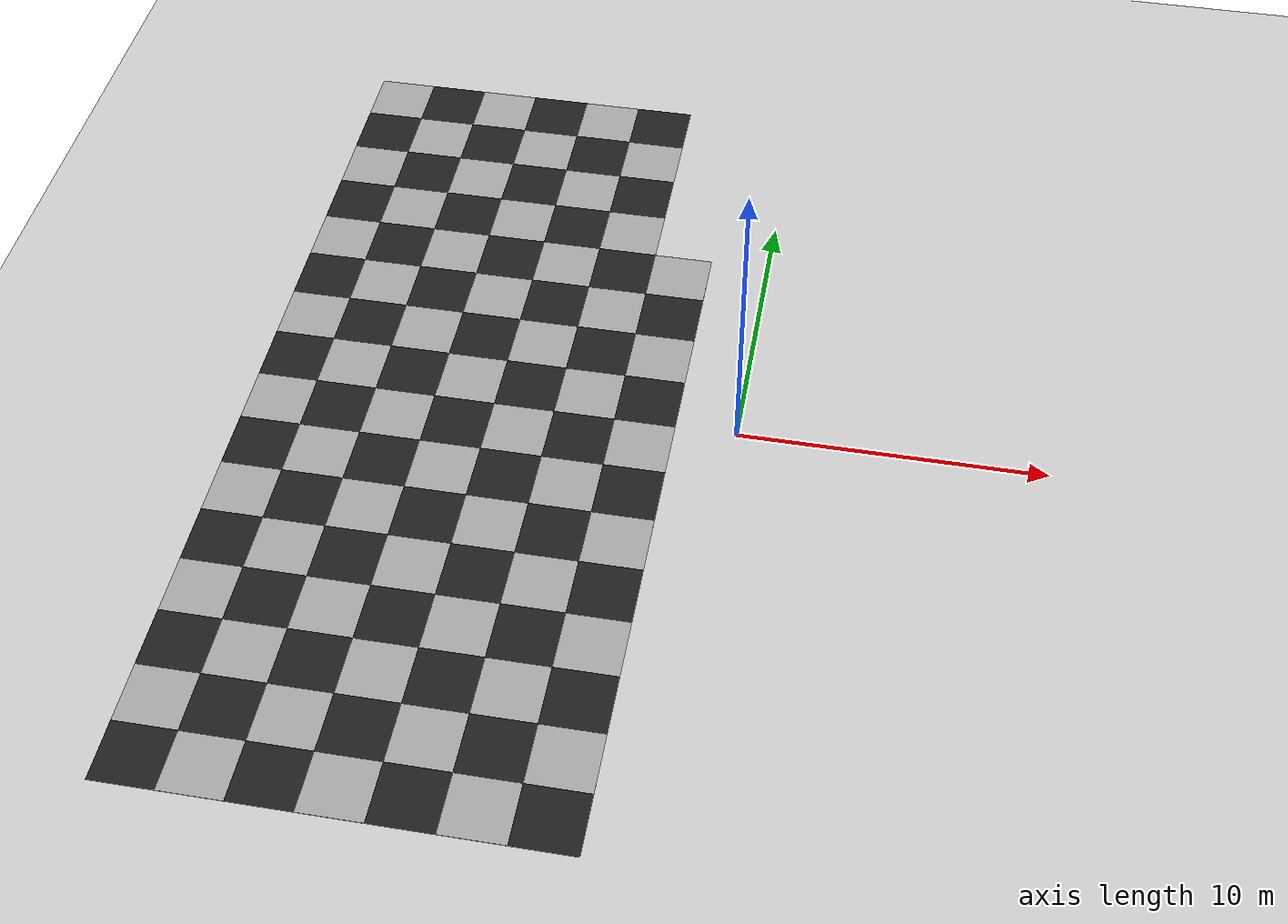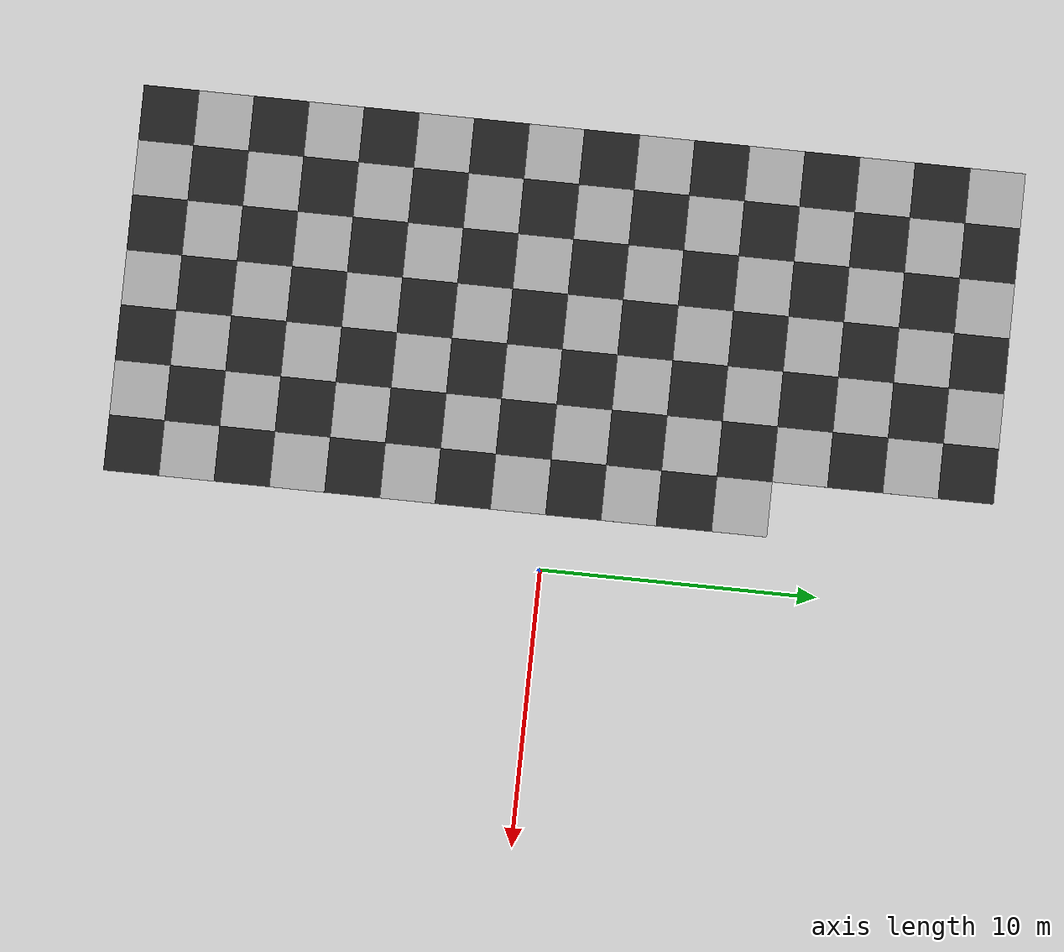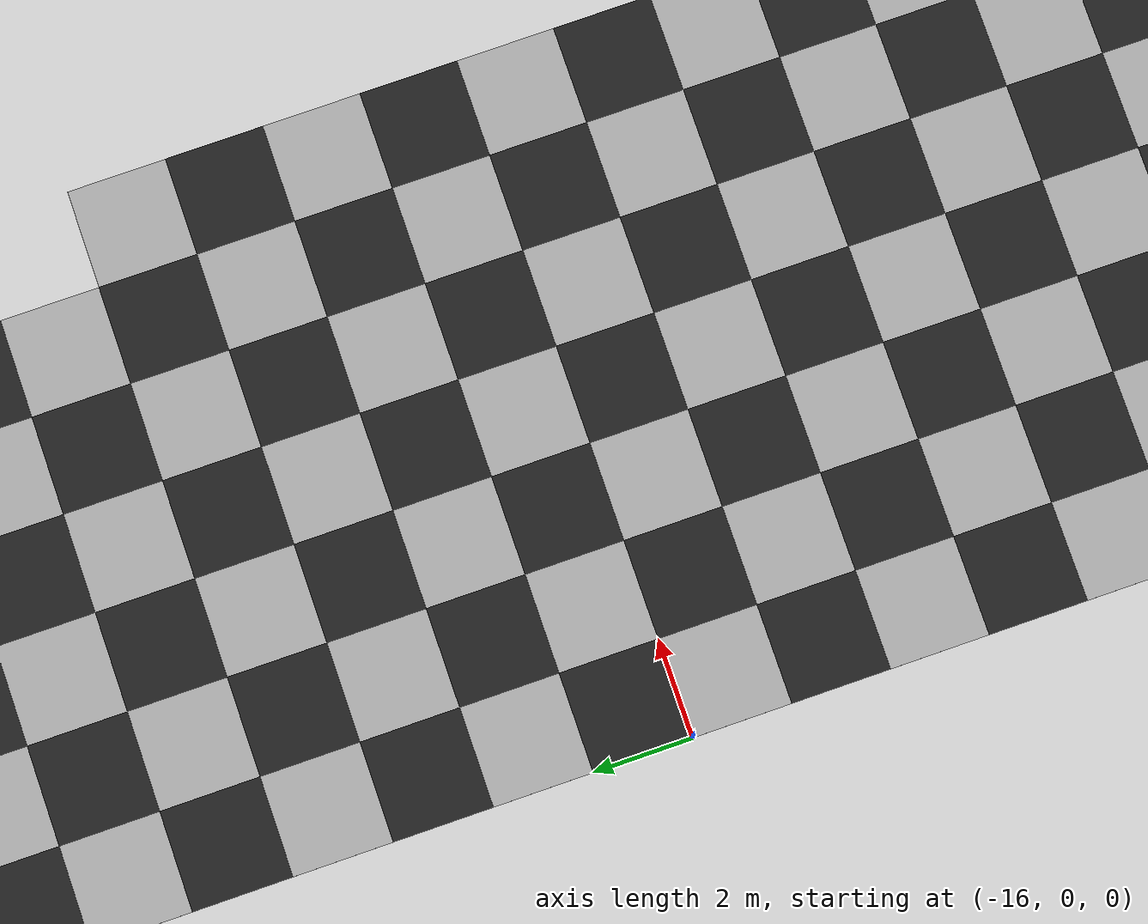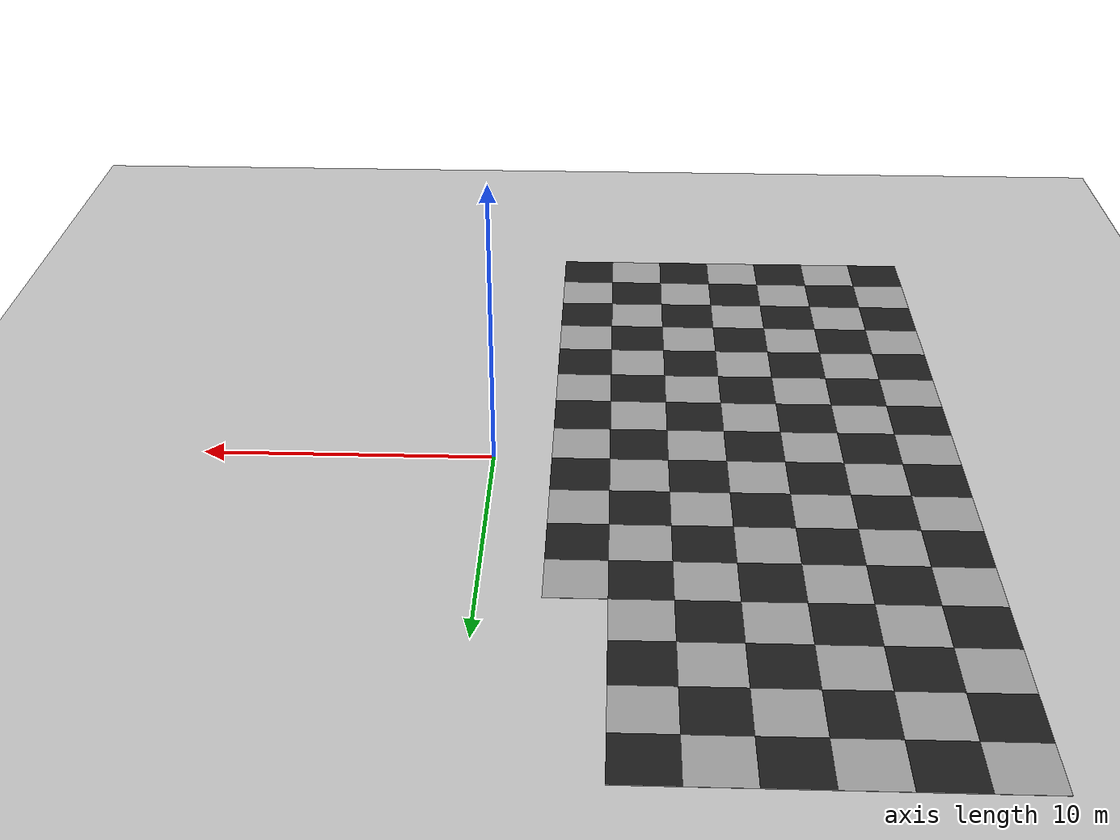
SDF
<sdf version="1.9">
 <world name="v6_optical_flow">
  <model name="ground_plane">
   <static>true</static>
   <link name="link">
    <collision name="collision">
     <geometry><plane><normal>0 0 1</normal><size>1 1</size></plane></geometry>
    </collision>
    <visual name="visual">
     <geometry><plane><normal>0 0 1</normal><size>500 500</size></plane></geometry>
     <material>
      <ambient>0.8 0.8 0.8 1</ambient>
      <diffuse>0.8 0.8 0.8 1</diffuse>
      <specular>0.1 0.1 0.1 1</specular>
     </material>
    </visual>
   </link>
  </model>
  <model name="optical_flow_floor">
   <static>true</static>
   <link name="tile_-8_-8">
    <pose>-15 -15 0.006 0 0 0</pose>
    <visual name="visual">
     <geometry><box><size>2 2 0.01</size></box></geometry>
     <material>
      <ambient>0.12 0.12 0.12 1</ambient>
      <diffuse>0.12 0.12 0.12 1</diffuse>
      <specular>0 0 0 1</specular>
     </material>
    </visual>
   </link>
   <link name="tile_-8_-7">
    <pose>-15 -13 0.006 0 0 0</pose>
    <visual name="visual">
     <geometry><box><size>2 2 0.01</size></box></geometry>
     <material>
      <ambient>0.65 0.65 0.65 1</ambient>
      <diffuse>0.65 0.65 0.65 1</diffuse>
      <specular>0 0 0 1</specular>
     </material>
    </visual>
   </link>
   <link name="tile_-8_-6">
    <pose>-15 -11 0.006 0 0 0</pose>
    <visual name="visual">
     <geometry><box><size>2 2 0.01</size></box></geometry>
     <material>
      <ambient>0.12 0.12 0.12 1</ambient>
      <diffuse>0.12 0.12 0.12 1</diffuse>
      <specular>0 0 0 1</specular>
     </material>
    </visual>
   </link>
   <link name="tile_-8_-5">
    <pose>-15 -9 0.006 0 0 0</pose>
    <visual name="visual">
     <geometry><box><size>2 2 0.01</size></box></geometry>
     <material>
      <ambient>0.65 0.65 0.65 1</ambient>
      <diffuse>0.65 0.65 0.65 1</diffuse>
      <specular>0 0 0 1</specular>
     </material>
    </visual>
   </link>
   <link name="tile_-8_-4">
    <pose>-15 -7 0.006 0 0 0</pose>
    <visual name="visual">
     <geometry><box><size>2 2 0.01</size></box></geometry>
     <material>
      <ambient>0.12 0.12 0.12 1</ambient>
      <diffuse>0.12 0.12 0.12 1</diffuse>
      <specular>0 0 0 1</specular>
     </material>
    </visual>
   </link>
   <link name="tile_-8_-3">
    <pose>-15 -5 0.006 0 0 0</pose>
    <visual name="visual">
     <geometry><box><size>2 2 0.01</size></box></geometry>
     <material>
      <ambient>0.65 0.65 0.65 1</ambient>
      <diffuse>0.65 0.65 0.65 1</diffuse>
      <specular>0 0 0 1</specular>
     </material>
    </visual>
   </link>
   <link name="tile_-8_-2">
    <pose>-15 -3 0.006 0 0 0</pose>
    <visual name="visual">
     <geometry><box><size>2 2 0.01</size></box></geometry>
     <material>
      <ambient>0.12 0.12 0.12 1</ambient>
      <diffuse>0.12 0.12 0.12 1</diffuse>
      <specular>0 0 0 1</specular>
     </material>
    </visual>
   </link>
   <link name="tile_-8_-1">
    <pose>-15 -1 0.006 0 0 0</pose>
    <visual name="visual">
     <geometry><box><size>2 2 0.01</size></box></geometry>
     <material>
      <ambient>0.65 0.65 0.65 1</ambient>
      <diffuse>0.65 0.65 0.65 1</diffuse>
      <specular>0 0 0 1</specular>
     </material>
    </visual>
   </link>
   <link name="tile_-8_0">
    <pose>-15 1 0.006 0 0 0</pose>
    <visual name="visual">
     <geometry><box><size>2 2 0.01</size></box></geometry>
     <material>
      <ambient>0.12 0.12 0.12 1</ambient>
      <diffuse>0.12 0.12 0.12 1</diffuse>
      <specular>0 0 0 1</specular>
     </material>
    </visual>
   </link>
   <link name="tile_-8_1">
    <pose>-15 3 0.006 0 0 0</pose>
    <visual name="visual">
     <geometry><box><size>2 2 0.01</size></box></geometry>
     <material>
      <ambient>0.65 0.65 0.65 1</ambient>
      <diffuse>0.65 0.65 0.65 1</diffuse>
      <specular>0 0 0 1</specular>
     </material>
    </visual>
   </link>
   <link name="tile_-8_2">
    <pose>-15 5 0.006 0 0 0</pose>
    <visual name="visual">
     <geometry><box><size>2 2 0.01</size></box></geometry>
     <material>
      <ambient>0.12 0.12 0.12 1</ambient>
      <diffuse>0.12 0.12 0.12 1</diffuse>
      <specular>0 0 0 1</specular>
     </material>
    </visual>
   </link>
   <link name="tile_-8_3">
    <pose>-15 7 0.006 0 0 0</pose>
    <visual name="visual">
     <geometry><box><size>2 2 0.01</size></box></geometry>
     <material>
      <ambient>0.65 0.65 0.65 1</ambient>
      <diffuse>0.65 0.65 0.65 1</diffuse>
      <specular>0 0 0 1</specular>
     </material>
    </visual>
   </link>
   <link name="tile_-8_4">
    <pose>-15 9 0.006 0 0 0</pose>
    <visual name="visual">
     <geometry><box><size>2 2 0.01</size></box></geometry>
     <material>
      <ambient>0.12 0.12 0.12 1</ambient>
      <diffuse>0.12 0.12 0.12 1</diffuse>
      <specular>0 0 0 1</specular>
     </material>
    </visual>
   </link>
   <link name="tile_-8_5">
    <pose>-15 11 0.006 0 0 0</pose>
    <visual name="visual">
     <geometry><box><size>2 2 0.01</size></box></geometry>
     <material>
      <ambient>0.65 0.65 0.65 1</ambient>
      <diffuse>0.65 0.65 0.65 1</diffuse>
      <specular>0 0 0 1</specular>
     </material>
    </visual>
   </link>
   <link name="tile_-8_6">
    <pose>-15 13 0.006 0 0 0</pose>
    <visual name="visual">
     <geometry><box><size>2 2 0.01</size></box></geometry>
     <material>
      <ambient>0.12 0.12 0.12 1</ambient>
      <diffuse>0.12 0.12 0.12 1</diffuse>
      <specular>0 0 0 1</specular>
     </material>
    </visual>
   </link>
   <link name="tile_-8_7">
    <pose>-15 15 0.006 0 0 0</pose>
    <visual name="visual">
     <geometry><box><size>2 2 0.01</size></box></geometry>
     <material>
      <ambient>0.65 0.65 0.65 1</ambient>
      <diffuse>0.65 0.65 0.65 1</diffuse>
      <specular>0 0 0 1</specular>
     </material>
    </visual>
   </link>
   <link name="tile_-7_-8">
    <pose>-13 -15 0.006 0 0 0</pose>
    <visual name="visual">
     <geometry><box><size>2 2 0.01</size></box></geometry>
     <material>
      <ambient>0.65 0.65 0.65 1</ambient>
      <diffuse>0.65 0.65 0.65 1</diffuse>
      <specular>0 0 0 1</specular>
     </material>
    </visual>
   </link>
   <link name="tile_-7_-7">
    <pose>-13 -13 0.006 0 0 0</pose>
    <visual name="visual">
     <geometry><box><size>2 2 0.01</size></box></geometry>
     <material>
      <ambient>0.12 0.12 0.12 1</ambient>
      <diffuse>0.12 0.12 0.12 1</diffuse>
      <specular>0 0 0 1</specular>
     </material>
    </visual>
   </link>
   <link name="tile_-7_-6">
    <pose>-13 -11 0.006 0 0 0</pose>
    <visual name="visual">
     <geometry><box><size>2 2 0.01</size></box></geometry>
     <material>
      <ambient>0.65 0.65 0.65 1</ambient>
      <diffuse>0.65 0.65 0.65 1</diffuse>
      <specular>0 0 0 1</specular>
     </material>
    </visual>
   </link>
   <link name="tile_-7_-5">
    <pose>-13 -9 0.006 0 0 0</pose>
    <visual name="visual">
     <geometry><box><size>2 2 0.01</size></box></geometry>
     <material>
      <ambient>0.12 0.12 0.12 1</ambient>
      <diffuse>0.12 0.12 0.12 1</diffuse>
      <specular>0 0 0 1</specular>
     </material>
    </visual>
   </link>
   <link name="tile_-7_-4">
    <pose>-13 -7 0.006 0 0 0</pose>
    <visual name="visual">
     <geometry><box><size>2 2 0.01</size></box></geometry>
     <material>
      <ambient>0.65 0.65 0.65 1</ambient>
      <diffuse>0.65 0.65 0.65 1</diffuse>
      <specular>0 0 0 1</specular>
     </material>
    </visual>
   </link>
   <link name="tile_-7_-3">
    <pose>-13 -5 0.006 0 0 0</pose>
    <visual name="visual">
     <geometry><box><size>2 2 0.01</size></box></geometry>
     <material>
      <ambient>0.12 0.12 0.12 1</ambient>
      <diffuse>0.12 0.12 0.12 1</diffuse>
      <specular>0 0 0 1</specular>
     </material>
    </visual>
   </link>
   <link name="tile_-7_-2">
    <pose>-13 -3 0.006 0 0 0</pose>
    <visual name="visual">
     <geometry><box><size>2 2 0.01</size></box></geometry>
     <material>
      <ambient>0.65 0.65 0.65 1</ambient>
      <diffuse>0.65 0.65 0.65 1</diffuse>
      <specular>0 0 0 1</specular>
     </material>
    </visual>
   </link>
   <link name="tile_-7_-1">
    <pose>-13 -1 0.006 0 0 0</pose>
    <visual name="visual">
     <geometry><box><size>2 2 0.01</size></box></geometry>
     <material>
      <ambient>0.12 0.12 0.12 1</ambient>
      <diffuse>0.12 0.12 0.12 1</diffuse>
      <specular>0 0 0 1</specular>
     </material>
    </visual>
   </link>
   <link name="tile_-7_0">
    <pose>-13 1 0.006 0 0 0</pose>
    <visual name="visual">
     <geometry><box><size>2 2 0.01</size></box></geometry>
     <material>
      <ambient>0.65 0.65 0.65 1</ambient>
      <diffuse>0.65 0.65 0.65 1</diffuse>
      <specular>0 0 0 1</specular>
     </material>
    </visual>
   </link>
   <link name="tile_-7_1">
    <pose>-13 3 0.006 0 0 0</pose>
    <visual name="visual">
     <geometry><box><size>2 2 0.01</size></box></geometry>
     <material>
      <ambient>0.12 0.12 0.12 1</ambient>
      <diffuse>0.12 0.12 0.12 1</diffuse>
      <specular>0 0 0 1</specular>
     </material>
    </visual>
   </link>
   <link name="tile_-7_2">
    <pose>-13 5 0.006 0 0 0</pose>
    <visual name="visual">
     <geometry><box><size>2 2 0.01</size></box></geometry>
     <material>
      <ambient>0.65 0.65 0.65 1</ambient>
      <diffuse>0.65 0.65 0.65 1</diffuse>
      <specular>0 0 0 1</specular>
     </material>
    </visual>
   </link>
   <link name="tile_-7_3">
    <pose>-13 7 0.006 0 0 0</pose>
    <visual name="visual">
     <geometry><box><size>2 2 0.01</size></box></geometry>
     <material>
      <ambient>0.12 0.12 0.12 1</ambient>
      <diffuse>0.12 0.12 0.12 1</diffuse>
      <specular>0 0 0 1</specular>
     </material>
    </visual>
   </link>
   <link name="tile_-7_4">
    <pose>-13 9 0.006 0 0 0</pose>
    <visual name="visual">
     <geometry><box><size>2 2 0.01</size></box></geometry>
     <material>
      <ambient>0.65 0.65 0.65 1</ambient>
      <diffuse>0.65 0.65 0.65 1</diffuse>
      <specular>0 0 0 1</specular>
     </material>
    </visual>
   </link>
   <link name="tile_-7_5">
    <pose>-13 11 0.006 0 0 0</pose>
    <visual name="visual">
     <geometry><box><size>2 2 0.01</size></box></geometry>
     <material>
      <ambient>0.12 0.12 0.12 1</ambient>
      <diffuse>0.12 0.12 0.12 1</diffuse>
      <specular>0 0 0 1</specular>
     </material>
    </visual>
   </link>
   <link name="tile_-7_6">
    <pose>-13 13 0.006 0 0 0</pose>
    <visual name="visual">
     <geometry><box><size>2 2 0.01</size></box></geometry>
     <material>
      <ambient>0.65 0.65 0.65 1</ambient>
      <diffuse>0.65 0.65 0.65 1</diffuse>
      <specular>0 0 0 1</specular>
     </material>
    </visual>
   </link>
   <link name="tile_-7_7">
    <pose>-13 15 0.006 0 0 0</pose>
    <visual name="visual">
     <geometry><box><size>2 2 0.01</size></box></geometry>
     <material>
      <ambient>0.12 0.12 0.12 1</ambient>
      <diffuse>0.12 0.12 0.12 1</diffuse>
      <specular>0 0 0 1</specular>
     </material>
    </visual>
   </link>
   <link name="tile_-6_-8">
    <pose>-11 -15 0.006 0 0 0</pose>
    <visual name="visual">
     <geometry><box><size>2 2 0.01</size></box></geometry>
     <material>
      <ambient>0.12 0.12 0.12 1</ambient>
      <diffuse>0.12 0.12 0.12 1</diffuse>
      <specular>0 0 0 1</specular>
     </material>
    </visual>
   </link>
   <link name="tile_-6_-7">
    <pose>-11 -13 0.006 0 0 0</pose>
    <visual name="visual">
     <geometry><box><size>2 2 0.01</size></box></geometry>
     <material>
      <ambient>0.65 0.65 0.65 1</ambient>
      <diffuse>0.65 0.65 0.65 1</diffuse>
      <specular>0 0 0 1</specular>
     </material>
    </visual>
   </link>
   <link name="tile_-6_-6">
    <pose>-11 -11 0.006 0 0 0</pose>
    <visual name="visual">
     <geometry><box><size>2 2 0.01</size></box></geometry>
     <material>
      <ambient>0.12 0.12 0.12 1</ambient>
      <diffuse>0.12 0.12 0.12 1</diffuse>
      <specular>0 0 0 1</specular>
     </material>
    </visual>
   </link>
   <link name="tile_-6_-5">
    <pose>-11 -9 0.006 0 0 0</pose>
    <visual name="visual">
     <geometry><box><size>2 2 0.01</size></box></geometry>
     <material>
      <ambient>0.65 0.65 0.65 1</ambient>
      <diffuse>0.65 0.65 0.65 1</diffuse>
      <specular>0 0 0 1</specular>
     </material>
    </visual>
   </link>
   <link name="tile_-6_-4">
    <pose>-11 -7 0.006 0 0 0</pose>
    <visual name="visual">
     <geometry><box><size>2 2 0.01</size></box></geometry>
     <material>
      <ambient>0.12 0.12 0.12 1</ambient>
      <diffuse>0.12 0.12 0.12 1</diffuse>
      <specular>0 0 0 1</specular>
     </material>
    </visual>
   </link>
   <link name="tile_-6_-3">
    <pose>-11 -5 0.006 0 0 0</pose>
    <visual name="visual">
     <geometry><box><size>2 2 0.01</size></box></geometry>
     <material>
      <ambient>0.65 0.65 0.65 1</ambient>
      <diffuse>0.65 0.65 0.65 1</diffuse>
      <specular>0 0 0 1</specular>
     </material>
    </visual>
   </link>
   <link name="tile_-6_-2">
    <pose>-11 -3 0.006 0 0 0</pose>
    <visual name="visual">
     <geometry><box><size>2 2 0.01</size></box></geometry>
     <material>
      <ambient>0.12 0.12 0.12 1</ambient>
      <diffuse>0.12 0.12 0.12 1</diffuse>
      <specular>0 0 0 1</specular>
     </material>
    </visual>
   </link>
   <link name="tile_-6_-1">
    <pose>-11 -1 0.006 0 0 0</pose>
    <visual name="visual">
     <geometry><box><size>2 2 0.01</size></box></geometry>
     <material>
      <ambient>0.65 0.65 0.65 1</ambient>
      <diffuse>0.65 0.65 0.65 1</diffuse>
      <specular>0 0 0 1</specular>
     </material>
    </visual>
   </link>
   <link name="tile_-6_0">
    <pose>-11 1 0.006 0 0 0</pose>
    <visual name="visual">
     <geometry><box><size>2 2 0.01</size></box></geometry>
     <material>
      <ambient>0.12 0.12 0.12 1</ambient>
      <diffuse>0.12 0.12 0.12 1</diffuse>
      <specular>0 0 0 1</specular>
     </material>
    </visual>
   </link>
   <link name="tile_-6_1">
    <pose>-11 3 0.006 0 0 0</pose>
    <visual name="visual">
     <geometry><box><size>2 2 0.01</size></box></geometry>
     <material>
      <ambient>0.65 0.65 0.65 1</ambient>
      <diffuse>0.65 0.65 0.65 1</diffuse>
      <specular>0 0 0 1</specular>
     </material>
    </visual>
   </link>
   <link name="tile_-6_2">
    <pose>-11 5 0.006 0 0 0</pose>
    <visual name="visual">
     <geometry><box><size>2 2 0.01</size></box></geometry>
     <material>
      <ambient>0.12 0.12 0.12 1</ambient>
      <diffuse>0.12 0.12 0.12 1</diffuse>
      <specular>0 0 0 1</specular>
     </material>
    </visual>
   </link>
   <link name="tile_-6_3">
    <pose>-11 7 0.006 0 0 0</pose>
    <visual name="visual">
     <geometry><box><size>2 2 0.01</size></box></geometry>
     <material>
      <ambient>0.65 0.65 0.65 1</ambient>
      <diffuse>0.65 0.65 0.65 1</diffuse>
      <specular>0 0 0 1</specular>
     </material>
    </visual>
   </link>
   <link name="tile_-6_4">
    <pose>-11 9 0.006 0 0 0</pose>
    <visual name="visual">
     <geometry><box><size>2 2 0.01</size></box></geometry>
     <material>
      <ambient>0.12 0.12 0.12 1</ambient>
      <diffuse>0.12 0.12 0.12 1</diffuse>
      <specular>0 0 0 1</specular>
     </material>
    </visual>
   </link>
   <link name="tile_-6_5">
    <pose>-11 11 0.006 0 0 0</pose>
    <visual name="visual">
     <geometry><box><size>2 2 0.01</size></box></geometry>
     <material>
      <ambient>0.65 0.65 0.65 1</ambient>
      <diffuse>0.65 0.65 0.65 1</diffuse>
      <specular>0 0 0 1</specular>
     </material>
    </visual>
   </link>
   <link name="tile_-6_6">
    <pose>-11 13 0.006 0 0 0</pose>
    <visual name="visual">
     <geometry><box><size>2 2 0.01</size></box></geometry>
     <material>
      <ambient>0.12 0.12 0.12 1</ambient>
      <diffuse>0.12 0.12 0.12 1</diffuse>
      <specular>0 0 0 1</specular>
     </material>
    </visual>
   </link>
   <link name="tile_-6_7">
    <pose>-11 15 0.006 0 0 0</pose>
    <visual name="visual">
     <geometry><box><size>2 2 0.01</size></box></geometry>
     <material>
      <ambient>0.65 0.65 0.65 1</ambient>
      <diffuse>0.65 0.65 0.65 1</diffuse>
      <specular>0 0 0 1</specular>
     </material>
    </visual>
   </link>
   <link name="tile_-5_-8">
    <pose>-9 -15 0.006 0 0 0</pose>
    <visual name="visual">
     <geometry><box><size>2 2 0.01</size></box></geometry>
     <material>
      <ambient>0.65 0.65 0.65 1</ambient>
      <diffuse>0.65 0.65 0.65 1</diffuse>
      <specular>0 0 0 1</specular>
     </material>
    </visual>
   </link>
   <link name="tile_-5_-7">
    <pose>-9 -13 0.006 0 0 0</pose>
    <visual name="visual">
     <geometry><box><size>2 2 0.01</size></box></geometry>
     <material>
      <ambient>0.12 0.12 0.12 1</ambient>
      <diffuse>0.12 0.12 0.12 1</diffuse>
      <specular>0 0 0 1</specular>
     </material>
    </visual>
   </link>
   <link name="tile_-5_-6">
    <pose>-9 -11 0.006 0 0 0</pose>
    <visual name="visual">
     <geometry><box><size>2 2 0.01</size></box></geometry>
     <material>
      <ambient>0.65 0.65 0.65 1</ambient>
      <diffuse>0.65 0.65 0.65 1</diffuse>
      <specular>0 0 0 1</specular>
     </material>
    </visual>
   </link>
   <link name="tile_-5_-5">
    <pose>-9 -9 0.006 0 0 0</pose>
    <visual name="visual">
     <geometry><box><size>2 2 0.01</size></box></geometry>
     <material>
      <ambient>0.12 0.12 0.12 1</ambient>
      <diffuse>0.12 0.12 0.12 1</diffuse>
      <specular>0 0 0 1</specular>
     </material>
    </visual>
   </link>
   <link name="tile_-5_-4">
    <pose>-9 -7 0.006 0 0 0</pose>
    <visual name="visual">
     <geometry><box><size>2 2 0.01</size></box></geometry>
     <material>
      <ambient>0.65 0.65 0.65 1</ambient>
      <diffuse>0.65 0.65 0.65 1</diffuse>
      <specular>0 0 0 1</specular>
     </material>
    </visual>
   </link>
   <link name="tile_-5_-3">
    <pose>-9 -5 0.006 0 0 0</pose>
    <visual name="visual">
     <geometry><box><size>2 2 0.01</size></box></geometry>
     <material>
      <ambient>0.12 0.12 0.12 1</ambient>
      <diffuse>0.12 0.12 0.12 1</diffuse>
      <specular>0 0 0 1</specular>
     </material>
    </visual>
   </link>
   <link name="tile_-5_-2">
    <pose>-9 -3 0.006 0 0 0</pose>
    <visual name="visual">
     <geometry><box><size>2 2 0.01</size></box></geometry>
     <material>
      <ambient>0.65 0.65 0.65 1</ambient>
      <diffuse>0.65 0.65 0.65 1</diffuse>
      <specular>0 0 0 1</specular>
     </material>
    </visual>
   </link>
   <link name="tile_-5_-1">
    <pose>-9 -1 0.006 0 0 0</pose>
    <visual name="visual">
     <geometry><box><size>2 2 0.01</size></box></geometry>
     <material>
      <ambient>0.12 0.12 0.12 1</ambient>
      <diffuse>0.12 0.12 0.12 1</diffuse>
      <specular>0 0 0 1</specular>
     </material>
    </visual>
   </link>
   <link name="tile_-5_0">
    <pose>-9 1 0.006 0 0 0</pose>
    <visual name="visual">
     <geometry><box><size>2 2 0.01</size></box></geometry>
     <material>
      <ambient>0.65 0.65 0.65 1</ambient>
      <diffuse>0.65 0.65 0.65 1</diffuse>
      <specular>0 0 0 1</specular>
     </material>
    </visual>
   </link>
   <link name="tile_-5_1">
    <pose>-9 3 0.006 0 0 0</pose>
    <visual name="visual">
     <geometry><box><size>2 2 0.01</size></box></geometry>
     <material>
      <ambient>0.12 0.12 0.12 1</ambient>
      <diffuse>0.12 0.12 0.12 1</diffuse>
      <specular>0 0 0 1</specular>
     </material>
    </visual>
   </link>
   <link name="tile_-5_2">
    <pose>-9 5 0.006 0 0 0</pose>
    <visual name="visual">
     <geometry><box><size>2 2 0.01</size></box></geometry>
     <material>
      <ambient>0.65 0.65 0.65 1</ambient>
      <diffuse>0.65 0.65 0.65 1</diffuse>
      <specular>0 0 0 1</specular>
     </material>
    </visual>
   </link>
   <link name="tile_-5_3">
    <pose>-9 7 0.006 0 0 0</pose>
    <visual name="visual">
     <geometry><box><size>2 2 0.01</size></box></geometry>
     <material>
      <ambient>0.12 0.12 0.12 1</ambient>
      <diffuse>0.12 0.12 0.12 1</diffuse>
      <specular>0 0 0 1</specular>
     </material>
    </visual>
   </link>
   <link name="tile_-5_4">
    <pose>-9 9 0.006 0 0 0</pose>
    <visual name="visual">
     <geometry><box><size>2 2 0.01</size></box></geometry>
     <material>
      <ambient>0.65 0.65 0.65 1</ambient>
      <diffuse>0.65 0.65 0.65 1</diffuse>
      <specular>0 0 0 1</specular>
     </material>
    </visual>
   </link>
   <link name="tile_-5_5">
    <pose>-9 11 0.006 0 0 0</pose>
    <visual name="visual">
     <geometry><box><size>2 2 0.01</size></box></geometry>
     <material>
      <ambient>0.12 0.12 0.12 1</ambient>
      <diffuse>0.12 0.12 0.12 1</diffuse>
      <specular>0 0 0 1</specular>
     </material>
    </visual>
   </link>
   <link name="tile_-5_6">
    <pose>-9 13 0.006 0 0 0</pose>
    <visual name="visual">
     <geometry><box><size>2 2 0.01</size></box></geometry>
     <material>
      <ambient>0.65 0.65 0.65 1</ambient>
      <diffuse>0.65 0.65 0.65 1</diffuse>
      <specular>0 0 0 1</specular>
     </material>
    </visual>
   </link>
   <link name="tile_-5_7">
    <pose>-9 15 0.006 0 0 0</pose>
    <visual name="visual">
     <geometry><box><size>2 2 0.01</size></box></geometry>
     <material>
      <ambient>0.12 0.12 0.12 1</ambient>
      <diffuse>0.12 0.12 0.12 1</diffuse>
      <specular>0 0 0 1</specular>
     </material>
    </visual>
   </link>
   <link name="tile_-4_-8">
    <pose>-7 -15 0.006 0 0 0</pose>
    <visual name="visual">
     <geometry><box><size>2 2 0.01</size></box></geometry>
     <material>
      <ambient>0.12 0.12 0.12 1</ambient>
      <diffuse>0.12 0.12 0.12 1</diffuse>
      <specular>0 0 0 1</specular>
     </material>
    </visual>
   </link>
   <link name="tile_-4_-7">
    <pose>-7 -13 0.006 0 0 0</pose>
    <visual name="visual">
     <geometry><box><size>2 2 0.01</size></box></geometry>
     <material>
      <ambient>0.65 0.65 0.65 1</ambient>
      <diffuse>0.65 0.65 0.65 1</diffuse>
      <specular>0 0 0 1</specular>
     </material>
    </visual>
   </link>
   <link name="tile_-4_-6">
    <pose>-7 -11 0.006 0 0 0</pose>
    <visual name="visual">
     <geometry><box><size>2 2 0.01</size></box></geometry>
     <material>
      <ambient>0.12 0.12 0.12 1</ambient>
      <diffuse>0.12 0.12 0.12 1</diffuse>
      <specular>0 0 0 1</specular>
     </material>
    </visual>
   </link>
   <link name="tile_-4_-5">
    <pose>-7 -9 0.006 0 0 0</pose>
    <visual name="visual">
     <geometry><box><size>2 2 0.01</size></box></geometry>
     <material>
      <ambient>0.65 0.65 0.65 1</ambient>
      <diffuse>0.65 0.65 0.65 1</diffuse>
      <specular>0 0 0 1</specular>
     </material>
    </visual>
   </link>
   <link name="tile_-4_-4">
    <pose>-7 -7 0.006 0 0 0</pose>
    <visual name="visual">
     <geometry><box><size>2 2 0.01</size></box></geometry>
     <material>
      <ambient>0.12 0.12 0.12 1</ambient>
      <diffuse>0.12 0.12 0.12 1</diffuse>
      <specular>0 0 0 1</specular>
     </material>
    </visual>
   </link>
   <link name="tile_-4_-3">
    <pose>-7 -5 0.006 0 0 0</pose>
    <visual name="visual">
     <geometry><box><size>2 2 0.01</size></box></geometry>
     <material>
      <ambient>0.65 0.65 0.65 1</ambient>
      <diffuse>0.65 0.65 0.65 1</diffuse>
      <specular>0 0 0 1</specular>
     </material>
    </visual>
   </link>
   <link name="tile_-4_-2">
    <pose>-7 -3 0.006 0 0 0</pose>
    <visual name="visual">
     <geometry><box><size>2 2 0.01</size></box></geometry>
     <material>
      <ambient>0.12 0.12 0.12 1</ambient>
      <diffuse>0.12 0.12 0.12 1</diffuse>
      <specular>0 0 0 1</specular>
     </material>
    </visual>
   </link>
   <link name="tile_-4_-1">
    <pose>-7 -1 0.006 0 0 0</pose>
    <visual name="visual">
     <geometry><box><size>2 2 0.01</size></box></geometry>
     <material>
      <ambient>0.65 0.65 0.65 1</ambient>
      <diffuse>0.65 0.65 0.65 1</diffuse>
      <specular>0 0 0 1</specular>
     </material>
    </visual>
   </link>
   <link name="tile_-4_0">
    <pose>-7 1 0.006 0 0 0</pose>
    <visual name="visual">
     <geometry><box><size>2 2 0.01</size></box></geometry>
     <material>
      <ambient>0.12 0.12 0.12 1</ambient>
      <diffuse>0.12 0.12 0.12 1</diffuse>
      <specular>0 0 0 1</specular>
     </material>
    </visual>
   </link>
   <link name="tile_-4_1">
    <pose>-7 3 0.006 0 0 0</pose>
    <visual name="visual">
     <geometry><box><size>2 2 0.01</size></box></geometry>
     <material>
      <ambient>0.65 0.65 0.65 1</ambient>
      <diffuse>0.65 0.65 0.65 1</diffuse>
      <specular>0 0 0 1</specular>
     </material>
    </visual>
   </link>
   <link name="tile_-4_2">
    <pose>-7 5 0.006 0 0 0</pose>
    <visual name="visual">
     <geometry><box><size>2 2 0.01</size></box></geometry>
     <material>
      <ambient>0.12 0.12 0.12 1</ambient>
      <diffuse>0.12 0.12 0.12 1</diffuse>
      <specular>0 0 0 1</specular>
     </material>
    </visual>
   </link>
   <link name="tile_-4_3">
    <pose>-7 7 0.006 0 0 0</pose>
    <visual name="visual">
     <geometry><box><size>2 2 0.01</size></box></geometry>
     <material>
      <ambient>0.65 0.65 0.65 1</ambient>
      <diffuse>0.65 0.65 0.65 1</diffuse>
      <specular>0 0 0 1</specular>
     </material>
    </visual>
   </link>
   <link name="tile_-4_4">
    <pose>-7 9 0.006 0 0 0</pose>
    <visual name="visual">
     <geometry><box><size>2 2 0.01</size></box></geometry>
     <material>
      <ambient>0.12 0.12 0.12 1</ambient>
      <diffuse>0.12 0.12 0.12 1</diffuse>
      <specular>0 0 0 1</specular>
     </material>
    </visual>
   </link>
   <link name="tile_-4_5">
    <pose>-7 11 0.006 0 0 0</pose>
    <visual name="visual">
     <geometry><box><size>2 2 0.01</size></box></geometry>
     <material>
      <ambient>0.65 0.65 0.65 1</ambient>
      <diffuse>0.65 0.65 0.65 1</diffuse>
      <specular>0 0 0 1</specular>
     </material>
    </visual>
   </link>
   <link name="tile_-4_6">
    <pose>-7 13 0.006 0 0 0</pose>
    <visual name="visual">
     <geometry><box><size>2 2 0.01</size></box></geometry>
     <material>
      <ambient>0.12 0.12 0.12 1</ambient>
      <diffuse>0.12 0.12 0.12 1</diffuse>
      <specular>0 0 0 1</specular>
     </material>
    </visual>
   </link>
   <link name="tile_-4_7">
    <pose>-7 15 0.006 0 0 0</pose>
    <visual name="visual">
     <geometry><box><size>2 2 0.01</size></box></geometry>
     <material>
      <ambient>0.65 0.65 0.65 1</ambient>
      <diffuse>0.65 0.65 0.65 1</diffuse>
      <specular>0 0 0 1</specular>
     </material>
    </visual>
   </link>
   <link name="tile_-3_-8">
    <pose>-5 -15 0.006 0 0 0</pose>
    <visual name="visual">
     <geometry><box><size>2 2 0.01</size></box></geometry>
     <material>
      <ambient>0.65 0.65 0.65 1</ambient>
      <diffuse>0.65 0.65 0.65 1</diffuse>
      <specular>0 0 0 1</specular>
     </material>
    </visual>
   </link>
   <link name="tile_-3_-7">
    <pose>-5 -13 0.006 0 0 0</pose>
    <visual name="visual">
     <geometry><box><size>2 2 0.01</size></box></geometry>
     <material>
      <ambient>0.12 0.12 0.12 1</ambient>
      <diffuse>0.12 0.12 0.12 1</diffuse>
      <specular>0 0 0 1</specular>
     </material>
    </visual>
   </link>
   <link name="tile_-3_-6">
    <pose>-5 -11 0.006 0 0 0</pose>
    <visual name="visual">
     <geometry><box><size>2 2 0.01</size></box></geometry>
     <material>
      <ambient>0.65 0.65 0.65 1</ambient>
      <diffuse>0.65 0.65 0.65 1</diffuse>
      <specular>0 0 0 1</specular>
     </material>
    </visual>
   </link>
   <link name="tile_-3_-5">
    <pose>-5 -9 0.006 0 0 0</pose>
    <visual name="visual">
     <geometry><box><size>2 2 0.01</size></box></geometry>
     <material>
      <ambient>0.12 0.12 0.12 1</ambient>
      <diffuse>0.12 0.12 0.12 1</diffuse>
      <specular>0 0 0 1</specular>
     </material>
    </visual>
   </link>
   <link name="tile_-3_-4">
    <pose>-5 -7 0.006 0 0 0</pose>
    <visual name="visual">
     <geometry><box><size>2 2 0.01</size></box></geometry>
     <material>
      <ambient>0.65 0.65 0.65 1</ambient>
      <diffuse>0.65 0.65 0.65 1</diffuse>
      <specular>0 0 0 1</specular>
     </material>
    </visual>
   </link>
   <link name="tile_-3_-3">
    <pose>-5 -5 0.006 0 0 0</pose>
    <visual name="visual">
     <geometry><box><size>2 2 0.01</size></box></geometry>
     <material>
      <ambient>0.12 0.12 0.12 1</ambient>
      <diffuse>0.12 0.12 0.12 1</diffuse>
      <specular>0 0 0 1</specular>
     </material>
    </visual>
   </link>
   <link name="tile_-3_-2">
    <pose>-5 -3 0.006 0 0 0</pose>
    <visual name="visual">
     <geometry><box><size>2 2 0.01</size></box></geometry>
     <material>
      <ambient>0.65 0.65 0.65 1</ambient>
      <diffuse>0.65 0.65 0.65 1</diffuse>
      <specular>0 0 0 1</specular>
     </material>
    </visual>
   </link>
   <link name="tile_-3_-1">
    <pose>-5 -1 0.006 0 0 0</pose>
    <visual name="visual">
     <geometry><box><size>2 2 0.01</size></box></geometry>
     <material>
      <ambient>0.12 0.12 0.12 1</ambient>
      <diffuse>0.12 0.12 0.12 1</diffuse>
      <specular>0 0 0 1</specular>
     </material>
    </visual>
   </link>
   <link name="tile_-3_0">
    <pose>-5 1 0.006 0 0 0</pose>
    <visual name="visual">
     <geometry><box><size>2 2 0.01</size></box></geometry>
     <material>
      <ambient>0.65 0.65 0.65 1</ambient>
      <diffuse>0.65 0.65 0.65 1</diffuse>
      <specular>0 0 0 1</specular>
     </material>
    </visual>
   </link>
   <link name="tile_-3_1">
    <pose>-5 3 0.006 0 0 0</pose>
    <visual name="visual">
     <geometry><box><size>2 2 0.01</size></box></geometry>
     <material>
      <ambient>0.12 0.12 0.12 1</ambient>
      <diffuse>0.12 0.12 0.12 1</diffuse>
      <specular>0 0 0 1</specular>
     </material>
    </visual>
   </link>
   <link name="tile_-3_2">
    <pose>-5 5 0.006 0 0 0</pose>
    <visual name="visual">
     <geometry><box><size>2 2 0.01</size></box></geometry>
     <material>
      <ambient>0.65 0.65 0.65 1</ambient>
      <diffuse>0.65 0.65 0.65 1</diffuse>
      <specular>0 0 0 1</specular>
     </material>
    </visual>
   </link>
   <link name="tile_-3_3">
    <pose>-5 7 0.006 0 0 0</pose>
    <visual name="visual">
     <geometry><box><size>2 2 0.01</size></box></geometry>
     <material>
      <ambient>0.12 0.12 0.12 1</ambient>
      <diffuse>0.12 0.12 0.12 1</diffuse>
      <specular>0 0 0 1</specular>
     </material>
    </visual>
   </link>
   <link name="tile_-3_4">
    <pose>-5 9 0.006 0 0 0</pose>
    <visual name="visual">
     <geometry><box><size>2 2 0.01</size></box></geometry>
     <material>
      <ambient>0.65 0.65 0.65 1</ambient>
      <diffuse>0.65 0.65 0.65 1</diffuse>
      <specular>0 0 0 1</specular>
     </material>
    </visual>
   </link>
   <link name="tile_-3_5">
    <pose>-5 11 0.006 0 0 0</pose>
    <visual name="visual">
     <geometry><box><size>2 2 0.01</size></box></geometry>
     <material>
      <ambient>0.12 0.12 0.12 1</ambient>
      <diffuse>0.12 0.12 0.12 1</diffuse>
      <specular>0 0 0 1</specular>
     </material>
    </visual>
   </link>
   <link name="tile_-3_6">
    <pose>-5 13 0.006 0 0 0</pose>
    <visual name="visual">
     <geometry><box><size>2 2 0.01</size></box></geometry>
     <material>
      <ambient>0.65 0.65 0.65 1</ambient>
      <diffuse>0.65 0.65 0.65 1</diffuse>
      <specular>0 0 0 1</specular>
     </material>
    </visual>
   </link>
   <link name="tile_-3_7">
    <pose>-5 15 0.006 0 0 0</pose>
    <visual name="visual">
     <geometry><box><size>2 2 0.01</size></box></geometry>
     <material>
      <ambient>0.12 0.12 0.12 1</ambient>
      <diffuse>0.12 0.12 0.12 1</diffuse>
      <specular>0 0 0 1</specular>
     </material>
    </visual>
   </link>
   <link name="tile_-2_-8">
    <pose>-3 -15 0.006 0 0 0</pose>
    <visual name="visual">
     <geometry><box><size>2 2 0.01</size></box></geometry>
     <material>
      <ambient>0.12 0.12 0.12 1</ambient>
      <diffuse>0.12 0.12 0.12 1</diffuse>
      <specular>0 0 0 1</specular>
     </material>
    </visual>
   </link>
   <link name="tile_-2_-7">
    <pose>-3 -13 0.006 0 0 0</pose>
    <visual name="visual">
     <geometry><box><size>2 2 0.01</size></box></geometry>
     <material>
      <ambient>0.65 0.65 0.65 1</ambient>
      <diffuse>0.65 0.65 0.65 1</diffuse>
      <specular>0 0 0 1</specular>
     </material>
    </visual>
   </link>
   <link name="tile_-2_-6">
    <pose>-3 -11 0.006 0 0 0</pose>
    <visual name="visual">
     <geometry><box><size>2 2 0.01</size></box></geometry>
     <material>
      <ambient>0.12 0.12 0.12 1</ambient>
      <diffuse>0.12 0.12 0.12 1</diffuse>
      <specular>0 0 0 1</specular>
     </material>
    </visual>
   </link>
   <link name="tile_-2_-5">
    <pose>-3 -9 0.006 0 0 0</pose>
    <visual name="visual">
     <geometry><box><size>2 2 0.01</size></box></geometry>
     <material>
      <ambient>0.65 0.65 0.65 1</ambient>
      <diffuse>0.65 0.65 0.65 1</diffuse>
      <specular>0 0 0 1</specular>
     </material>
    </visual>
   </link>
   <link name="tile_-2_-4">
    <pose>-3 -7 0.006 0 0 0</pose>
    <visual name="visual">
     <geometry><box><size>2 2 0.01</size></box></geometry>
     <material>
      <ambient>0.12 0.12 0.12 1</ambient>
      <diffuse>0.12 0.12 0.12 1</diffuse>
      <specular>0 0 0 1</specular>
     </material>
    </visual>
   </link>
   <link name="tile_-2_-3">
    <pose>-3 -5 0.006 0 0 0</pose>
    <visual name="visual">
     <geometry><box><size>2 2 0.01</size></box></geometry>
     <material>
      <ambient>0.65 0.65 0.65 1</ambient>
      <diffuse>0.65 0.65 0.65 1</diffuse>
      <specular>0 0 0 1</specular>
     </material>
    </visual>
   </link>
   <link name="tile_-2_-2">
    <pose>-3 -3 0.006 0 0 0</pose>
    <visual name="visual">
     <geometry><box><size>2 2 0.01</size></box></geometry>
     <material>
      <ambient>0.12 0.12 0.12 1</ambient>
      <diffuse>0.12 0.12 0.12 1</diffuse>
      <specular>0 0 0 1</specular>
     </material>
    </visual>
   </link>
   <link name="tile_-2_-1">
    <pose>-3 -1 0.006 0 0 0</pose>
    <visual name="visual">
     <geometry><box><size>2 2 0.01</size></box></geometry>
     <material>
      <ambient>0.65 0.65 0.65 1</ambient>
      <diffuse>0.65 0.65 0.65 1</diffuse>
      <specular>0 0 0 1</specular>
     </material>
    </visual>
   </link>
   <link name="tile_-2_0">
    <pose>-3 1 0.006 0 0 0</pose>
    <visual name="visual">
     <geometry><box><size>2 2 0.01</size></box></geometry>
     <material>
      <ambient>0.12 0.12 0.12 1</ambient>
      <diffuse>0.12 0.12 0.12 1</diffuse>
      <specular>0 0 0 1</specular>
     </material>
    </visual>
   </link>
   <link name="tile_-2_1">
    <pose>-3 3 0.006 0 0 0</pose>
    <visual name="visual">
     <geometry><box><size>2 2 0.01</size></box></geometry>
     <material>
      <ambient>0.65 0.65 0.65 1</ambient>
      <diffuse>0.65 0.65 0.65 1</diffuse>
      <specular>0 0 0 1</specular>
     </material>
    </visual>
   </link>
   <link name="tile_-2_2">
    <pose>-3 5 0.006 0 0 0</pose>
    <visual name="visual">
     <geometry><box><size>2 2 0.01</size></box></geometry>
     <material>
      <ambient>0.12 0.12 0.12 1</ambient>
      <diffuse>0.12 0.12 0.12 1</diffuse>
      <specular>0 0 0 1</specular>
     </material>
    </visual>
   </link>
   <link name="tile_-2_3">
    <pose>-3 7 0.006 0 0 0</pose>
    <visual name="visual">
     <geometry><box><size>2 2 0.01</size></box></geometry>
     <material>
      <ambient>0.65 0.65 0.65 1</ambient>
      <diffuse>0.65 0.65 0.65 1</diffuse>
      <specular>0 0 0 1</specular>
     </material>
    </visual>
   </link>
  </model>
 </world>
</sdf>
